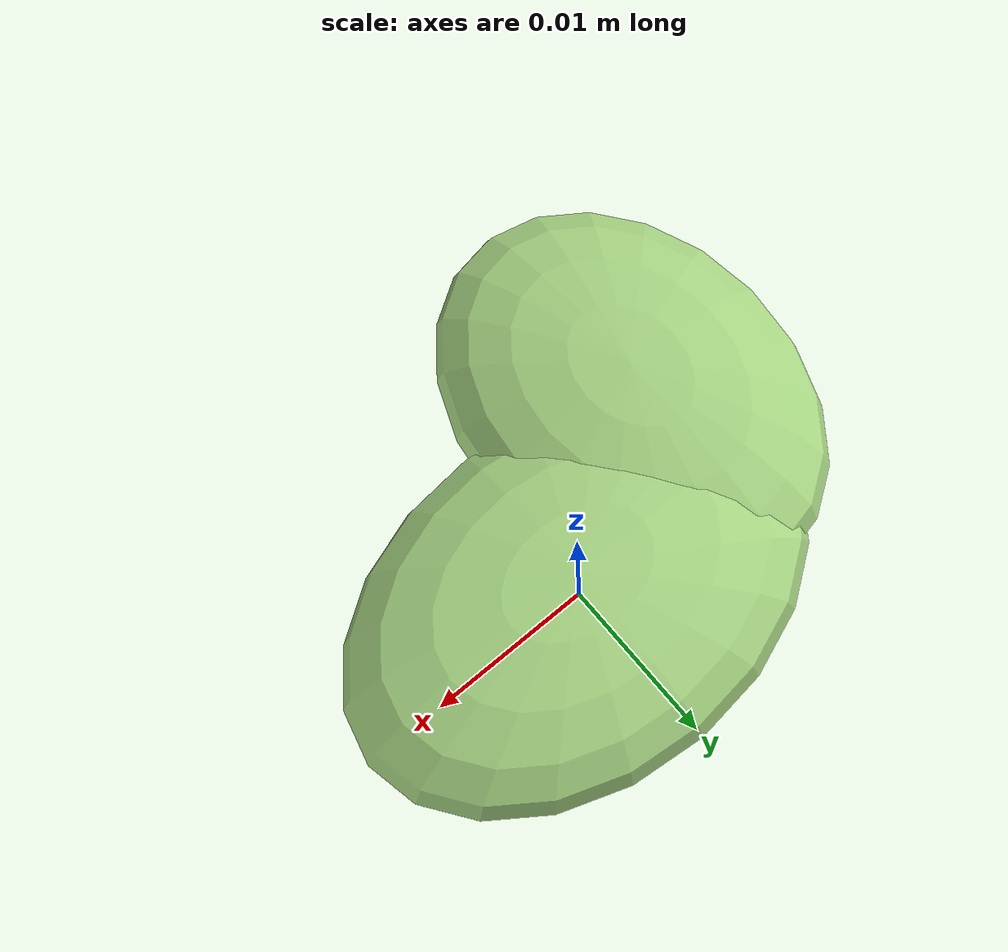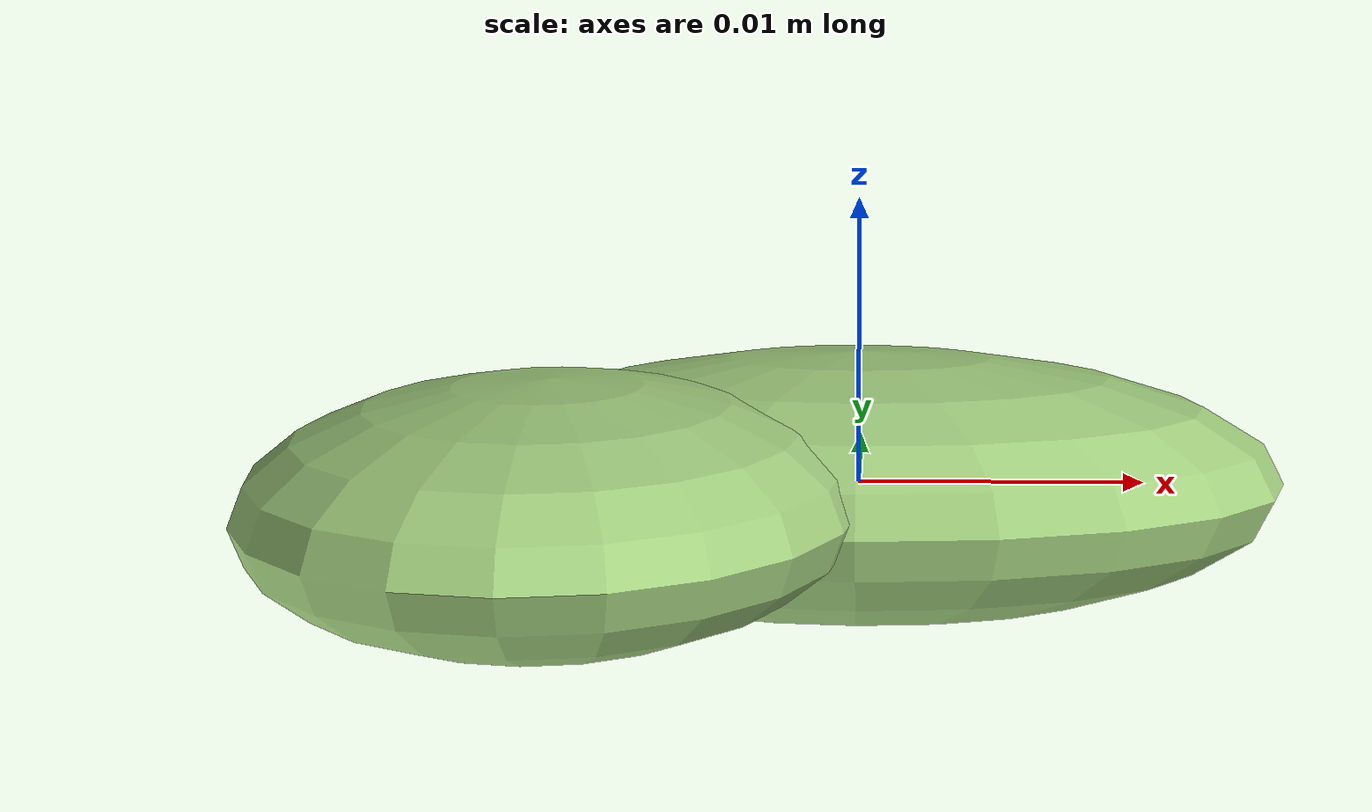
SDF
<?xml version="1.0" ?>
<!-- |    This document was autogenerated by xmacro from data/veggie_template/veggie_base.sdf.xacro  | -->
<!-- |    EDITING THIS FILE BY HAND IS NOT RECOMMENDED                                               | -->
<sdf version="1.8">
	<!-- Parameters -->
	<!-- Base -->
	<!-- Joint 0 -->
	<!-- Link 1 -->
	<!-- Joint 1 -->
	<!-- Link 2 -->
	<!-- Primitives -->
	<!-- All dimensions are half -->
	<!-- Object -->
	<model name="veggie">
		<!-- link0 -->
		<link name="link0">
			<inertial>
				<mass>0.003039159904918114</mass>
				<inertia>
					<ixx>8.04159120966167e-08</ixx>
					<ixy>0</ixy>
					<ixz>0</ixz>
					<iyy>1.4781912924899727e-07</iyy>
					<iyz>0</iyz>
					<izz>2.0221639875057064e-07</izz>
				</inertia>
			</inertial>
			<visual name="link0_visual">
				<pose>0 0 0 0 0 0</pose>
				<geometry>
					<ellipsoid>
						<radii>0.014892546735323505 0.010530752550474396 0.004626318691640226</radii>
					</ellipsoid>
				</geometry>
				<material>
					<ambient>0.659 0.839 0.514 1</ambient>
					<diffuse>0.659 0.839 0.514 1</diffuse>
					<specular>0 0 0 0</specular>
					<emissive>0 0 0 1</emissive>
				</material>
			</visual>
			<collision name="link0_collision">
				<pose>0 0 0 0 0 0 </pose>
				<geometry>
					<ellipsoid>
						<radii>0.014892546735323505 0.010530752550474396 0.004626318691640226</radii>
					</ellipsoid>
				</geometry>
			</collision>
		</link>
		<!-- link1 -->
		<joint name="joint0" type="fixed">
			<pose relative_to="link0">-0.010064266502838913 -0.007421119360370828 0.0004987673010521896 0.0 0.0 0.0</pose>
			<parent>link0</parent>
			<child>link1</child>
		</joint>
		<link name="link1">
			<pose relative_to="joint0">0 0 0 0 0 0</pose>
			<inertial>
				<mass>0.002447249009791194</mass>
				<inertia>
					<ixx>9.909528776280006e-08</ixx>
					<ixy>0</ixy>
					<ixz>0</ixz>
					<iyy>5.985019347786598e-08</iyy>
					<iyz>0</iyz>
					<izz>1.4166562044604325e-07</izz>
				</inertia>
			</inertial>
			<visual name="link1_visual">
				<pose>0 0 0 0 0 0</pose>
				<geometry>
					<ellipsoid>
						<radii>0.010228793824799218 0.013594494655690436 0.004201467837725285</radii>
					</ellipsoid>
				</geometry>
				<material>
					<ambient>0.659 0.839 0.514 1</ambient>
					<diffuse>0.659 0.839 0.514 1</diffuse>
					<specular>0 0 0 0</specular>
					<emissive>0 0 0 1</emissive>
				</material>
			</visual>
			<collision name="link1_collision">
				<pose>0 0 0 0 0 0 </pose>
				<geometry>
					<ellipsoid>
						<radii>0.010228793824799218 0.013594494655690436 0.004201467837725285</radii>
					</ellipsoid>
				</geometry>
			</collision>
		</link>
		<!-- link2 -->
	</model>
</sdf>
